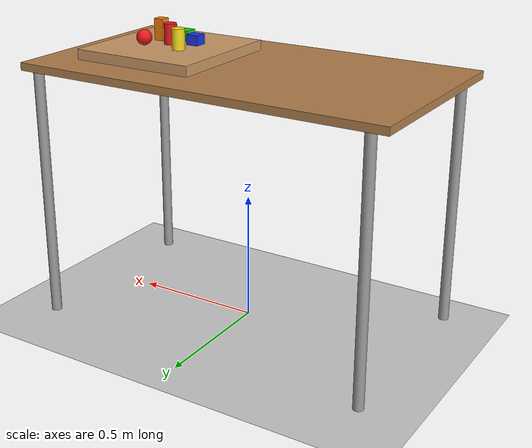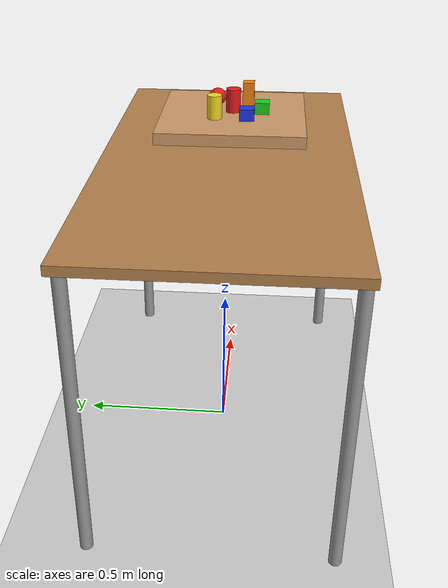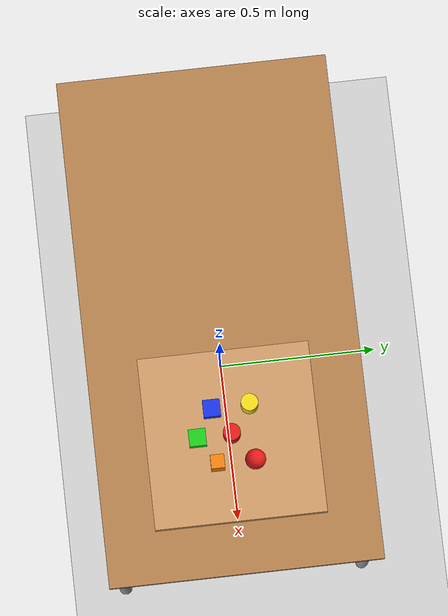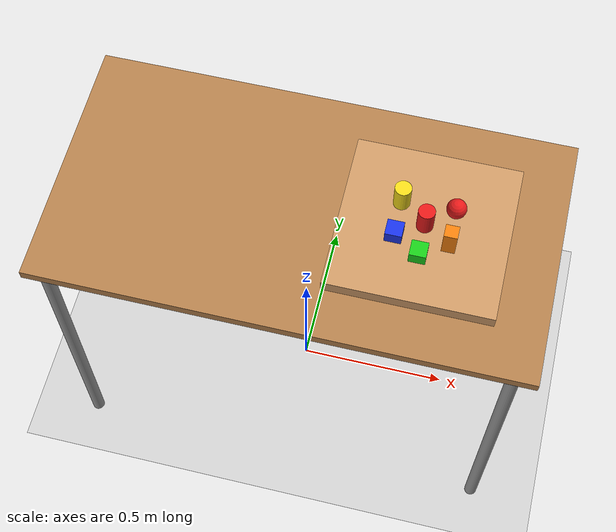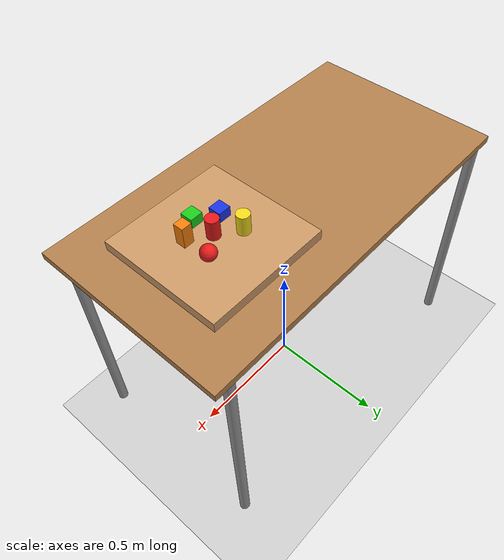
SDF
<?xml version="1.0" ?>
<sdf version="1.7">
  <world name="default">

    <gui fullscreen="0">
      <!-- Camera framed on this scene's workspace -->
      <plugin filename="MinimalScene" name="3D View">
        <gz-gui>
          <title>3D View</title>
          <property type="bool" key="showTitleBar">false</property>
          <property type="string" key="state">docked</property>
        </gz-gui>
        <engine>ogre2</engine>
        <scene>scene</scene>
        <ambient_light>0.6 0.6 0.6</ambient_light>
        <background_color>0.7 0.85 0.95</background_color>
        <!-- Pulled back/up from the old (-1.1 -1.1 1.65) pose so both the
             single-arm and dual-arm (~1m wider) rigs fit in frame by default. -->
        <camera_pose>1.3 -1.1 1.9 0 0.5 2.27</camera_pose>
      </plugin>
      <plugin filename="EntityContextMenuPlugin" name="Entity context menu">
        <gz-gui>
          <property key="state" type="string">floating</property>
          <property key="width" type="double">5</property>
          <property key="height" type="double">5</property>
          <property key="showTitleBar" type="bool">false</property>
        </gz-gui>
      </plugin>
      <plugin filename="GzSceneManager" name="Scene Manager">
        <gz-gui>
          <property key="resizable" type="bool">false</property>
          <property key="width" type="double">5</property>
          <property key="height" type="double">5</property>
          <property key="state" type="string">floating</property>
          <property key="showTitleBar" type="bool">false</property>
        </gz-gui>
      </plugin>
      <plugin filename="InteractiveViewControl" name="Interactive view control">
        <gz-gui>
          <property key="resizable" type="bool">false</property>
          <property key="width" type="double">5</property>
          <property key="height" type="double">5</property>
          <property key="state" type="string">floating</property>
          <property key="showTitleBar" type="bool">false</property>
        </gz-gui>
      </plugin>
      <plugin filename="CameraTracking" name="Camera Tracking">
        <gz-gui>
          <property key="resizable" type="bool">false</property>
          <property key="width" type="double">5</property>
          <property key="height" type="double">5</property>
          <property key="state" type="string">floating</property>
          <property key="showTitleBar" type="bool">false</property>
        </gz-gui>
      </plugin>
      <plugin filename="MarkerManager" name="Marker manager">
        <gz-gui>
          <property key="resizable" type="bool">false</property>
          <property key="width" type="double">5</property>
          <property key="height" type="double">5</property>
          <property key="state" type="string">floating</property>
          <property key="showTitleBar" type="bool">false</property>
        </gz-gui>
      </plugin>
      <plugin filename="SelectEntities" name="Select Entities">
        <gz-gui>
          <property key="resizable" type="bool">false</property>
          <property key="width" type="double">5</property>
          <property key="height" type="double">5</property>
          <property key="state" type="string">floating</property>
          <property key="showTitleBar" type="bool">false</property>
        </gz-gui>
      </plugin>
      <plugin filename="Spawn" name="Spawn Entities">
        <gz-gui>
          <property key="resizable" type="bool">false</property>
          <property key="width" type="double">5</property>
          <property key="height" type="double">5</property>
          <property key="state" type="string">floating</property>
          <property key="showTitleBar" type="bool">false</property>
        </gz-gui>
      </plugin>
      <plugin filename="VisualizationCapabilities" name="Visualization Capabilities">
        <gz-gui>
          <property key="resizable" type="bool">false</property>
          <property key="width" type="double">5</property>
          <property key="height" type="double">5</property>
          <property key="state" type="string">floating</property>
          <property key="showTitleBar" type="bool">false</property>
        </gz-gui>
      </plugin>
      <plugin filename="WorldControl" name="World control">
        <gz-gui>
          <title>World control</title>
          <property type="bool" key="showTitleBar">false</property>
          <property type="bool" key="resizable">false</property>
          <property type="double" key="height">72</property>
          <property type="double" key="z">1</property>
          <property type="string" key="state">floating</property>
          <anchors target="3D View">
            <line own="left" target="left"/>
            <line own="bottom" target="bottom"/>
          </anchors>
        </gz-gui>
        <play_pause>true</play_pause>
        <step>true</step>
        <start_paused>true</start_paused>
        <use_event>true</use_event>
      </plugin>
      <plugin filename="WorldStats" name="World stats">
        <gz-gui>
          <title>World stats</title>
          <property type="bool" key="showTitleBar">false</property>
          <property type="bool" key="resizable">false</property>
          <property type="double" key="height">110</property>
          <property type="double" key="width">290</property>
          <property type="double" key="z">1</property>
          <property type="string" key="state">floating</property>
          <anchors target="3D View">
            <line own="right" target="right"/>
            <line own="bottom" target="bottom"/>
          </anchors>
        </gz-gui>
        <sim_time>true</sim_time>
        <real_time>true</real_time>
        <real_time_factor>true</real_time_factor>
        <iterations>true</iterations>
      </plugin>
      <plugin filename="EntityTree" name="Entity tree">
        <gz-gui>
          <property type="bool" key="showTitleBar">false</property>
          <property type="string" key="state">docked</property>
        </gz-gui>
      </plugin>
    </gui>

    <!-- Matches the GUI's MinimalScene ambient_light/background_color above,
         plus shadows on (ogre2 supports it) and grid off for a cleaner render. -->
    <scene>
      <ambient>0.6 0.6 0.6 1</ambient>
      <background>0.7 0.85 0.95 1</background>
      <shadows>true</shadows>
      <grid>false</grid>
    </scene>

    <physics name="default_physics" type="bullet">
      <max_step_size>0.001</max_step_size>
      <real_time_factor>1</real_time_factor>
    </physics>

    <!-- Plugin for simulating physics -->
    <plugin filename="gz-sim-physics-system" name="gz::sim::systems::Physics">
    </plugin>

    <!-- Plugin for handling user commands -->
    <plugin filename="gz-sim-user-commands-system" name="gz::sim::systems::UserCommands">
    </plugin>

    <!-- Plugin for broadcasting scene updates -->
    <plugin filename="gz-sim-scene-broadcaster-system" name="gz::sim::systems::SceneBroadcaster">
    </plugin>

    <!-- Plugin for sensor handling -->
    <plugin filename="gz-sim-sensors-system" name="gz::sim::systems::Sensors">
      <render_engine>ogre2</render_engine>
    </plugin>

    <!-- Sun (from Fuel) -->
    <include>
      <uri>https://fuel.gazebosim.org/1.0/OpenRobotics/models/Sun</uri>
    </include>

    <!-- Ground Plane (from Fuel) -->
    <include>
      <uri>https://fuel.gazebosim.org/1.0/OpenRobotics/models/Ground Plane</uri>
    </include>

    <include>
      <name>mount_table</name>
      <uri>model://mount_table</uri>
      <pose>0 0 0 0 0 0</pose>
    </include>

    <model name="table">
      <static>true</static>
      <pose>0.35 0.0 1.035 0 0 0</pose>
      <link name="link">
        <collision name="collision">
          <geometry>
            <box><size>0.50 0.50 0.04</size></box>
          </geometry>
        </collision>
        <visual name="visual">
          <geometry>
            <box><size>0.50 0.50 0.04</size></box>
          </geometry>
          <material>
            <ambient>0.8 0.6 0.4 1</ambient>
            <diffuse>0.8 0.6 0.4 1</diffuse>
            <specular>0.2 0.2 0.2 1</specular>
          </material>
        </visual>
      </link>
    </model>

    <model name="red_cylinder">
      <static>false</static>
      <pose>0.35 0.0 1.097 0 0 0</pose>
      <link name="link">
        <collision name="collision">
          <geometry>
            <cylinder><radius>0.025</radius><length>0.08</length></cylinder>
          </geometry>
          <surface>
            <friction>
              <ode><mu>1.5</mu><mu2>1.5</mu2></ode>
            </friction>
          </surface>
        </collision>
        <visual name="visual">
          <geometry>
            <cylinder><radius>0.025</radius><length>0.08</length></cylinder>
          </geometry>
          <material>
            <ambient>0.9 0.1 0.1 1</ambient>
            <diffuse>0.9 0.1 0.1 1</diffuse>
            <specular>0.2 0.2 0.2 1</specular>
          </material>
        </visual>
        <inertial>
          <mass>0.1</mass>
          <inertia>
            <ixx>0.0002</ixx><ixy>0</ixy><ixz>0</ixz>
            <iyy>0.0002</iyy><iyz>0</iyz>
            <izz>0.0002</izz>
          </inertia>
        </inertial>
      </link>
    </model>

    <model name="green_box">
      <static>false</static>
      <pose>0.35 -0.10 1.07 0 0 0</pose>
      <link name="link">
        <collision name="collision">
          <geometry><box><size>0.05 0.05 0.05</size></box></geometry>
          <surface><friction><ode><mu>1.5</mu><mu2>1.5</mu2></ode></friction></surface>
        </collision>
        <visual name="visual">
          <geometry><box><size>0.05 0.05 0.05</size></box></geometry>
          <material>
            <ambient>0.1 0.8 0.1 1</ambient>
            <diffuse>0.1 0.8 0.1 1</diffuse>
            <specular>0.2 0.2 0.2 1</specular>
          </material>
        </visual>
        <inertial>
          <mass>0.1</mass>
          <inertia>
            <ixx>0.00004</ixx><ixy>0</ixy><ixz>0</ixz>
            <iyy>0.00004</iyy><iyz>0</iyz>
            <izz>0.00004</izz>
          </inertia>
        </inertial>
      </link>
    </model>

    <model name="blue_box">
      <static>false</static>
      <pose>0.27 -0.05 1.07 0 0 0</pose>
      <link name="link">
        <collision name="collision">
          <geometry><box><size>0.05 0.05 0.05</size></box></geometry>
          <surface><friction><ode><mu>1.5</mu><mu2>1.5</mu2></ode></friction></surface>
        </collision>
        <visual name="visual">
          <geometry><box><size>0.05 0.05 0.05</size></box></geometry>
          <material><ambient>0.1 0.2 0.9 1</ambient><diffuse>0.1 0.2 0.9 1</diffuse><specular>0.2 0.2 0.2 1</specular></material>
        </visual>
        <inertial><mass>0.1</mass><inertia><ixx>0.00004</ixx><ixy>0</ixy><ixz>0</ixz><iyy>0.00004</iyy><iyz>0</iyz><izz>0.00004</izz></inertia></inertial>
      </link>
    </model>

    <model name="yellow_cylinder">
      <static>false</static>
      <pose>0.27 0.06 1.097 0 0 0</pose>
      <link name="link">
        <collision name="collision">
          <geometry><cylinder><radius>0.025</radius><length>0.08</length></cylinder></geometry>
          <surface><friction><ode><mu>1.5</mu><mu2>1.5</mu2></ode></friction></surface>
        </collision>
        <visual name="visual">
          <geometry><cylinder><radius>0.025</radius><length>0.08</length></cylinder></geometry>
          <material><ambient>0.95 0.85 0.1 1</ambient><diffuse>0.95 0.85 0.1 1</diffuse><specular>0.2 0.2 0.2 1</specular></material>
        </visual>
        <inertial><mass>0.1</mass><inertia><ixx>0.0002</ixx><ixy>0</ixy><ixz>0</ixz><iyy>0.0002</iyy><iyz>0</iyz><izz>0.0002</izz></inertia></inertial>
      </link>
    </model>

    <model name="orange_tall_box">
      <static>false</static>
      <pose>0.43 -0.05 1.095 0 0 0</pose>
      <link name="link">
        <collision name="collision">
          <geometry><box><size>0.04 0.04 0.09</size></box></geometry>
          <surface><friction><ode><mu>1.5</mu><mu2>1.5</mu2></ode></friction></surface>
        </collision>
        <visual name="visual">
          <geometry><box><size>0.04 0.04 0.09</size></box></geometry>
          <material><ambient>0.95 0.5 0.05 1</ambient><diffuse>0.95 0.5 0.05 1</diffuse><specular>0.2 0.2 0.2 1</specular></material>
        </visual>
        <inertial><mass>0.1</mass><inertia><ixx>0.0001</ixx><ixy>0</ixy><ixz>0</ixz><iyy>0.0001</iyy><iyz>0</iyz><izz>0.00003</izz></inertia></inertial>
      </link>
    </model>

    <model name="red_ball">
      <static>false</static>
      <pose>0.43 0.06 1.085 0 0 0</pose>
      <link name="link">
        <collision name="collision">
          <geometry><sphere><radius>0.03</radius></sphere></geometry>
          <surface><friction><ode><mu>1.5</mu><mu2>1.5</mu2></ode></friction></surface>
        </collision>
        <visual name="visual">
          <geometry><sphere><radius>0.03</radius></sphere></geometry>
          <material><ambient>0.9 0.1 0.1 1</ambient><diffuse>0.9 0.1 0.1 1</diffuse><specular>0.2 0.2 0.2 1</specular></material>
        </visual>
        <inertial><mass>0.1</mass><inertia><ixx>0.00004</ixx><ixy>0</ixy><ixz>0</ixz><iyy>0.00004</iyy><iyz>0</iyz><izz>0.00004</izz></inertia></inertial>
      </link>
    </model>

    <model name="drop_zone">
      <static>true</static>
      <pose>0.35 0.20 1.04 0 0 0</pose>
      <link name="link">
        <collision name="collision">
          <geometry>
            <cylinder><radius>0.05</radius><length>0.005</length></cylinder>
          </geometry>
        </collision>
        <visual name="visual">
          <geometry>
            <cylinder><radius>0.05</radius><length>0.005</length></cylinder>
          </geometry>
          <material>
            <ambient>0.1 0.9 0.1 0.4</ambient>
            <diffuse>0.1 0.9 0.1 0.4</diffuse>
            <specular>0.2 0.2 0.2 0.4</specular>
          </material>
          <transparency>0.6</transparency>
        </visual>
      </link>
    </model>

    <!-- Showcase camera for README images/GIFs: off unless something subscribes to /showcase_cam/image -->
    <model name="showcase_cam">
      <static>true</static>
      <pose>1.2 -1.0 2.0 0 0.5134 2.2764</pose>
      <link name="link">
        <sensor name="showcase_cam" type="camera">
          <always_on>0</always_on>
          <update_rate>15</update_rate>
          <topic>showcase_cam/image</topic>
          <camera>
            <horizontal_fov>1.0</horizontal_fov>
            <image><width>960</width><height>540</height><format>R8G8B8</format></image>
            <clip><near>0.1</near><far>8</far></clip>
          </camera>
        </sensor>
      </link>
    </model>
</world>
</sdf>

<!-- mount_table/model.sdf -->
<sdf version="1.5">
    <model name="mount_table">
        <static>true</static>
        <link name="link">
            <collision name="surface">
                <pose>0 0 1.0 0 0 0</pose>
                <geometry>
                    <box>
                        <size>1.5 0.8 0.03</size>
                    </box>
                </geometry>
                <surface>
                    <friction>
                        <ode>
                            <mu>0.6</mu>
                            <mu2>0.6</mu2>
                        </ode>
                    </friction>
                </surface>
            </collision>
            <visual name="visual1">
                <pose>0 0 1.0 0 0 0</pose>
                <geometry>
                    <box>
                        <size>1.5 0.8 0.03</size>
                    </box>
                </geometry>
                <material>
                    <diffuse>1.0 1.0 1.0</diffuse>
                    <script>
                        <uri>file://media/materials/scripts/gazebo.material</uri>
                        <name>Gazebo/Wood</name>
                    </script>
                    <!-- PBR for Ignition, material scripts for gazebo classic-->
                    <pbr>
                        <metal>
                            <albedo_map>model://mount_table/Table_Diffuse.jpg</albedo_map>
                        </metal>
                    </pbr>
                </material>
            </visual>
            <collision name="front_left_leg">
                <pose>0.68 0.38 0.5 0 0 0</pose>
                <geometry>
                    <cylinder>
                        <radius>0.02</radius>
                        <length>1.0</length>
                    </cylinder>
                </geometry>
            </collision>
            <visual name="front_left_leg">
                <pose>0.68 0.38 0.5 0 0 0</pose>
                <geometry>
                    <cylinder>
                        <radius>0.02</radius>
                        <length>1.0</length>
                    </cylinder>
                </geometry>
                <material>
                    <diffuse>0.5 0.5 0.5</diffuse>
                    <script>
                        <uri>file://media/materials/scripts/gazebo.material</uri>
                        <name>Gazebo/Grey</name>
                    </script>
                </material>
            </visual>
            <collision name="front_right_leg">
                <pose>0.68 -0.38 0.5 0 0 0</pose>
                <geometry>
                    <cylinder>
                        <radius>0.02</radius>
                        <length>1.0</length>
                    </cylinder>
                </geometry>
            </collision>
            <visual name="front_right_leg">
                <pose>0.68 -0.38 0.5 0 0 0</pose>
                <geometry>
                    <cylinder>
                        <radius>0.02</radius>
                        <length>1.0</length>
                    </cylinder>
                </geometry>
                <material>
                    <diffuse>0.5 0.5 0.5</diffuse>
                    <script>
                        <uri>file://media/materials/scripts/gazebo.material</uri>
                        <name>Gazebo/Grey</name>
                    </script>
                </material>
            </visual>
            <collision name="back_right_leg">
                <pose>-0.68 -0.38 0.5 0 0 0</pose>
                <geometry>
                    <cylinder>
                        <radius>0.02</radius>
                        <length>1.0</length>
                    </cylinder>
                </geometry>
            </collision>
            <visual name="back_right_leg">
                <pose>-0.68 -0.38 0.5 0 0 0</pose>
                <geometry>
                    <cylinder>
                        <radius>0.02</radius>
                        <length>1.0</length>
                    </cylinder>
                </geometry>
                <material>
                    <diffuse>0.5 0.5 0.5</diffuse>
                    <script>
                        <uri>file://media/materials/scripts/gazebo.material</uri>
                        <name>Gazebo/Grey</name>
                    </script>
                </material>
            </visual>
            <collision name="back_left_leg">
                <pose>-0.68 0.38 0.5 0 0 0</pose>
                <geometry>
                    <cylinder>
                        <radius>0.02</radius>
                        <length>1.0</length>
                    </cylinder>
                </geometry>
            </collision>
            <visual name="back_left_leg">
                <pose>-0.68 0.38 0.5 0 0 0</pose>
                <geometry>
                    <cylinder>
                        <radius>0.02</radius>
                        <length>1.0</length>
                    </cylinder>
                </geometry>
                <material>
                    <diffuse>0.5 0.5 0.5</diffuse>
                    <script>
                        <uri>file://media/materials/scripts/gazebo.material</uri>
                        <name>Gazebo/Grey</name>
                    </script>
                </material>
            </visual>
        </link>
    </model>
</sdf>
